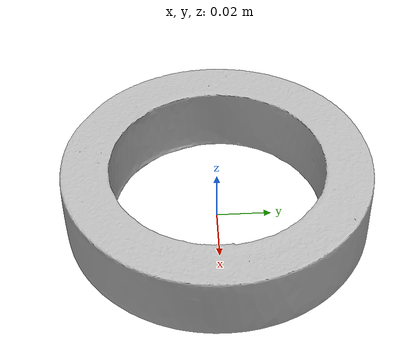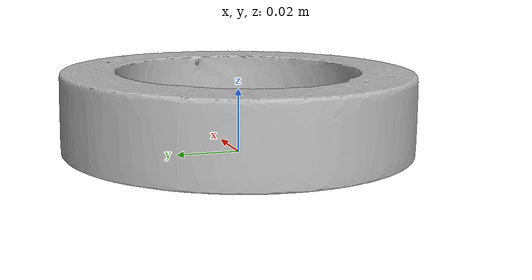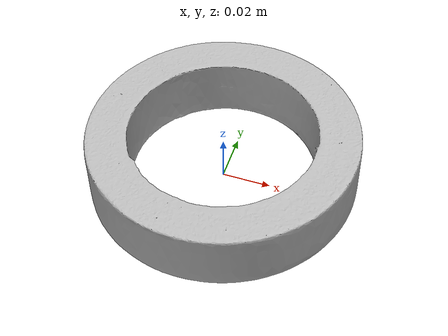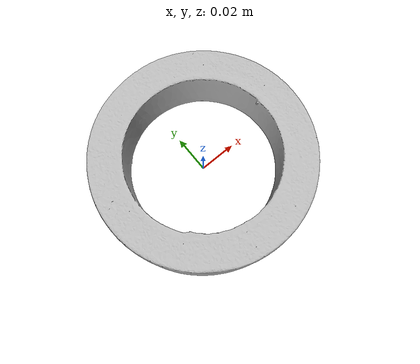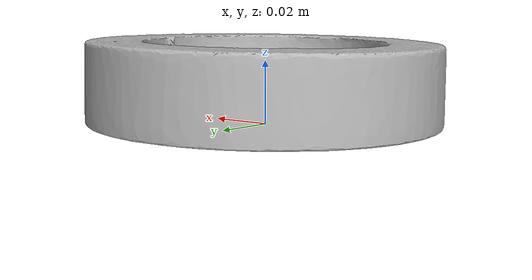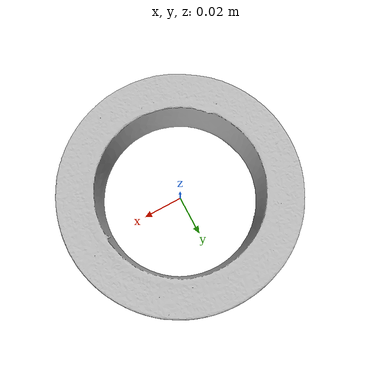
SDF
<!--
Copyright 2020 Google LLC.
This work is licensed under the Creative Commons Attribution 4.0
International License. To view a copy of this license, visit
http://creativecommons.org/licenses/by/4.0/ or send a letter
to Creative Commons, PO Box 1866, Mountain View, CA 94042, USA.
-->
<?xml version="1.0" ?>
<sdf version="1.6">
  <model name="Shurtape_Gaffers_Tape_Silver_2_x_60_yd">
    <link name="link_0">
      <visual name="visual">
        <geometry>
          <mesh>
            <uri>meshes/model.obj</uri>
          </mesh>
        </geometry>
      </visual>
      <collision name="collision_0">
        <geometry>
          <mesh>
            <uri>meshes/model.obj</uri>
          </mesh>
        </geometry>
      </collision>
    </link>
  </model>
</sdf>
